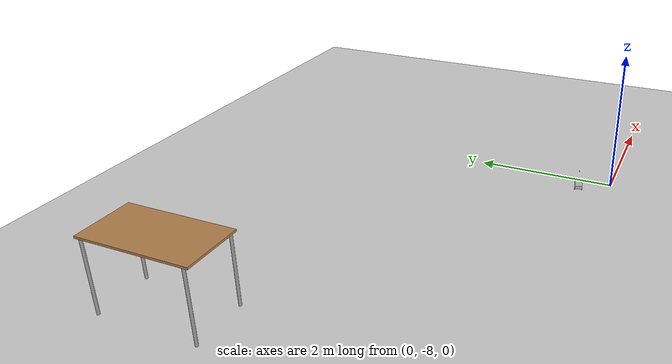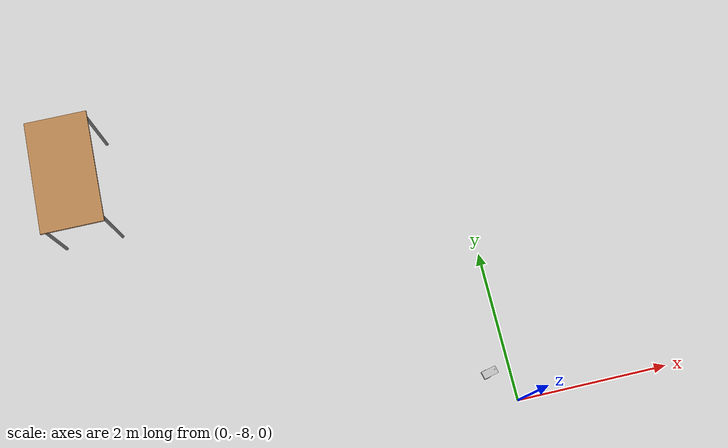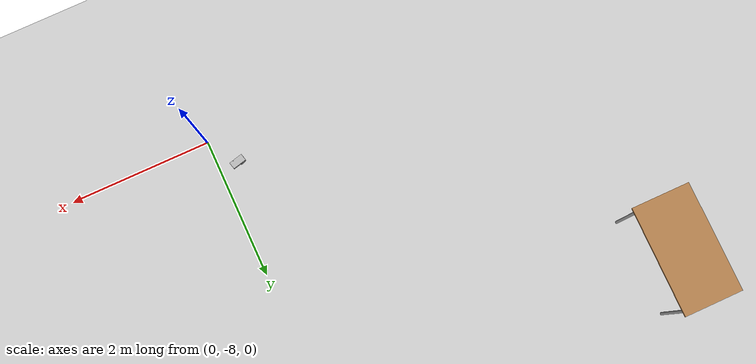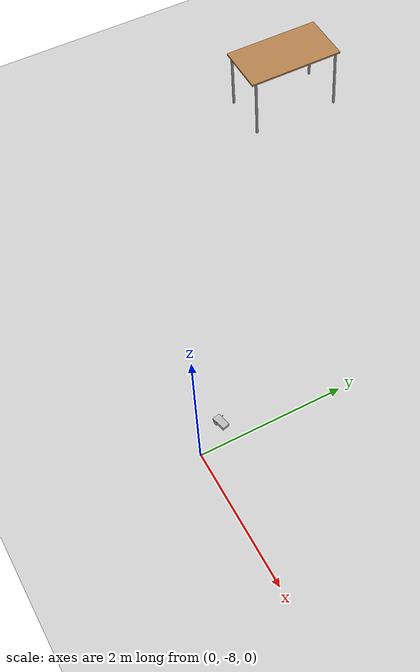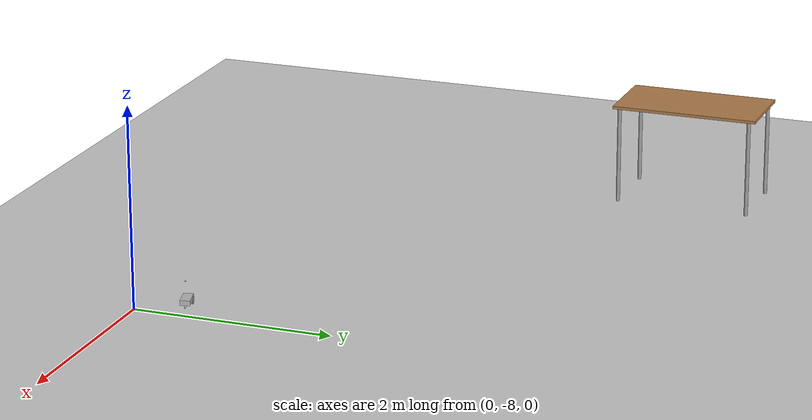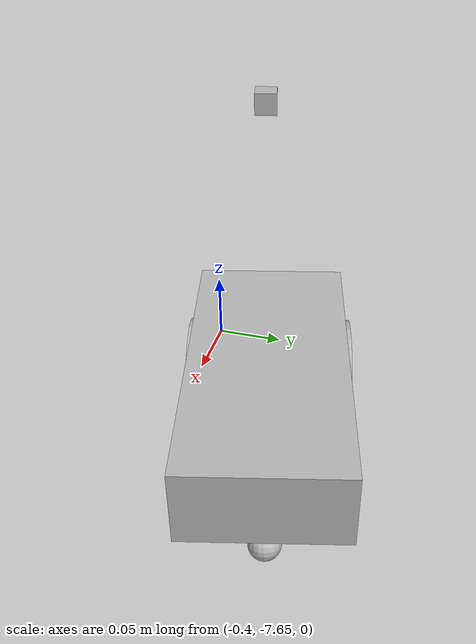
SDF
<sdf version="1.7">
 <world name="yolo_test_world">
  <light name="sun" type="directional">
   <pose>0 0 10 0 -0 0</pose>
   <diffuse>0.8 0.8 0.8 1</diffuse>
   <specular>0.2 0.2 0.2 1</specular>
   <attenuation>
    <range>1000</range>
    <constant>0.9</constant>
    <linear>0.01</linear>
    <quadratic>0.001</quadratic>
   </attenuation>
   <direction>-0.5 0.1 -0.9</direction>
   <spot><inner_angle>0</inner_angle><outer_angle>0</outer_angle><falloff>0</falloff></spot>
  </light>
  <model name="ground_plane">
   <static>1</static>
   <link name="link">
    <collision name="collision">
     <geometry><plane><normal>0 0 1</normal><size>100 100</size></plane></geometry>
     <surface>
      <contact><collide_bitmask>65535</collide_bitmask></contact>
      <friction><ode><mu>100</mu><mu2>50</mu2></ode></friction>
     </surface>
    </collision>
    <visual name="visual">
     <cast_shadows>0</cast_shadows>
     <geometry><plane><normal>0 0 1</normal><size>100 100</size></plane></geometry>
     <material>
      <script><uri>file://media/materials/scripts/gazebo.material</uri><name>Gazebo/Grey</name></script>
     </material>
    </visual>
   </link>
  </model>
  <model name="table">
   <static>1</static>
   <link name="link">
    <collision name="surface">
     <pose>0 0 1 0 -0 0</pose>
     <geometry><box><size>1.5 0.8 0.03</size></box></geometry>
     <surface><friction><ode><mu>0.6</mu><mu2>0.6</mu2></ode></friction></surface>
    </collision>
    <visual name="visual1">
     <pose>0 0 1 0 -0 0</pose>
     <geometry><box><size>1.5 0.8 0.03</size></box></geometry>
     <material>
      <script><uri>file://media/materials/scripts/gazebo.material</uri><name>Gazebo/Wood</name></script>
     </material>
    </visual>
    <collision name="front_left_leg">
     <pose>0.68 0.38 0.5 0 -0 0</pose>
     <geometry><cylinder><radius>0.02</radius><length>1</length></cylinder></geometry>
    </collision>
    <visual name="front_left_leg">
     <pose>0.68 0.38 0.5 0 -0 0</pose>
     <geometry><cylinder><radius>0.02</radius><length>1</length></cylinder></geometry>
     <material>
      <script><uri>file://media/materials/scripts/gazebo.material</uri><name>Gazebo/Grey</name></script>
     </material>
    </visual>
    <collision name="front_right_leg">
     <pose>0.68 -0.38 0.5 0 -0 0</pose>
     <geometry><cylinder><radius>0.02</radius><length>1</length></cylinder></geometry>
    </collision>
    <visual name="front_right_leg">
     <pose>0.68 -0.38 0.5 0 -0 0</pose>
     <geometry><cylinder><radius>0.02</radius><length>1</length></cylinder></geometry>
     <material>
      <script><uri>file://media/materials/scripts/gazebo.material</uri><name>Gazebo/Grey</name></script>
     </material>
    </visual>
    <collision name="back_right_leg">
     <pose>-0.68 -0.38 0.5 0 -0 0</pose>
     <geometry><cylinder><radius>0.02</radius><length>1</length></cylinder></geometry>
    </collision>
    <visual name="back_right_leg">
     <pose>-0.68 -0.38 0.5 0 -0 0</pose>
     <geometry><cylinder><radius>0.02</radius><length>1</length></cylinder></geometry>
     <material>
      <script><uri>file://media/materials/scripts/gazebo.material</uri><name>Gazebo/Grey</name></script>
     </material>
    </visual>
    <collision name="back_left_leg">
     <pose>-0.68 0.38 0.5 0 -0 0</pose>
     <geometry><cylinder><radius>0.02</radius><length>1</length></cylinder></geometry>
    </collision>
    <visual name="back_left_leg">
     <pose>-0.68 0.38 0.5 0 -0 0</pose>
     <geometry><cylinder><radius>0.02</radius><length>1</length></cylinder></geometry>
     <material>
      <script><uri>file://media/materials/scripts/gazebo.material</uri><name>Gazebo/Grey</name></script>
     </material>
    </visual>
   </link>
   <pose>-5 -4 0 0 -0 1.57</pose>
  </model>
  <gravity>0 0 -9.8</gravity>
  <magnetic_field>6e-06 2.3e-05 -4.2e-05</magnetic_field>
  <atmosphere type="adiabatic"/>
  <physics type="ode">
   <max_step_size>0.001</max_step_size>
   <real_time_factor>1</real_time_factor>
   <real_time_update_rate>1000</real_time_update_rate>
  </physics>
  <scene><ambient>0.4 0.4 0.4 1</ambient><background>0.7 0.7 0.7 1</background><shadows>1</shadows></scene>
  <audio><device>default</device></audio>
  <spherical_coordinates>
   <surface_model>EARTH_WGS84</surface_model>
   <latitude_deg>0</latitude_deg>
   <longitude_deg>0</longitude_deg>
   <elevation>0</elevation>
   <heading_deg>0</heading_deg>
  </spherical_coordinates>
  <model name="yolobot">
   <link name="base_link">
    <inertial>
     <pose>0 0 -0.025 0 -0 0</pose>
     <mass>1</mass>
     <inertia>
      <ixx>0.000333333</ixx>
      <ixy>0</ixy>
      <ixz>0</ixz>
      <iyy>0.000333333</iyy>
      <iyz>0</iyz>
      <izz>0.000333333</izz>
     </inertia>
    </inertial>
    <collision name="base_link_fixed_joint_lump__collision_chassis_collision">
     <geometry><box><size>0.2 0.1 0.05</size></box></geometry>
    </collision>
    <visual name="base_link_fixed_joint_lump__visual_chassis_visual">
     <geometry><box><size>0.2 0.1 0.05</size></box></geometry>
    </visual>
    <visual name="base_link_fixed_joint_lump__rgb_cam_camera_link_visual_1">
     <pose>0.04 0 0.2 0 -0 0</pose>
     <geometry><box><size>0.01 0.01 0.01</size></box></geometry>
    </visual>
    <sensor name="rgb_cam" type="camera">
     <always_on>1</always_on>
     <update_rate>10</update_rate>
     <camera name="rgb_cam">
      <horizontal_fov>1.39626</horizontal_fov>
      <image><width>640</width><height>480</height><format>R8G8B8</format></image>
      <clip><near>0.005</near><far>20</far></clip>
     </camera>
     <plugin name="camera_controller" filename="libgazebo_ros_camera.so">
      <alwaysOn>1</alwaysOn>
      <updateRate>0.0</updateRate>
      <cameraName>rgb_cam</cameraName>
      <imageTopicName>image_raw</imageTopicName>
      <cameraInfoTopicName>camera_info</cameraInfoTopicName>
      <frameName>rgb_cam_camera_link_frame</frameName>
      <hackBaseline>0.07</hackBaseline>
      <distortionK1>0.0</distortionK1>
      <distortionK2>0.0</distortionK2>
      <distortionK3>0.0</distortionK3>
      <distortionT1>0.0</distortionT1>
      <distortionT2>0.0</distortionT2>
     </plugin>
     <pose>0.05 0 0.2 0 -0 0</pose>
    </sensor>
   </link>
   <joint name="front_yaw_joint" type="revolute">
    <pose relative_to="base_link">0.08 0 -0.05 0 -0 0</pose>
    <parent>base_link</parent>
    <child>front_yaw_link</child>
    <axis>
     <xyz>0 0 1</xyz>
     <limit><effort>1000</effort><velocity>100</velocity><lower>-1e+16</lower><upper>1e+16</upper></limit>
     <dynamics>
      <damping>0</damping>
      <friction>0.1</friction>
      <spring_reference>0</spring_reference>
      <spring_stiffness>0</spring_stiffness>
     </dynamics>
    </axis>
   </joint>
   <link name="front_yaw_link">
    <pose relative_to="front_yaw_joint">0 0 0 0 -0 0</pose>
    <inertial>
     <pose>0 0 0 -0 1.5707 1.5707</pose>
     <mass>0.001</mass>
     <inertia>
      <ixx>5.14583e-09</ixx>
      <ixy>0</ixy>
      <ixz>0</ixz>
      <iyy>5.14583e-09</iyy>
      <iyz>0</iyz>
      <izz>1.0125e-08</izz>
     </inertia>
    </inertial>
    <collision name="front_yaw_link_fixed_joint_lump__link_right_wheel_collision_collision">
     <pose>0 0 0 1.57089 1.57079 -3.14159</pose>
     <geometry><cylinder><length>0.001</length><radius>0.0045</radius></cylinder></geometry>
    </collision>
   </link>
   <joint name="front_roll_joint" type="revolute">
    <pose relative_to="front_yaw_link">0 0 0 0 -0 0</pose>
    <parent>front_yaw_link</parent>
    <child>front_roll_link</child>
    <axis>
     <xyz>1 0 0</xyz>
     <limit><effort>1000</effort><velocity>100</velocity><lower>-1e+16</lower><upper>1e+16</upper></limit>
     <dynamics>
      <damping>0</damping>
      <friction>0.1</friction>
      <spring_reference>0</spring_reference>
      <spring_stiffness>0</spring_stiffness>
     </dynamics>
    </axis>
   </joint>
   <link name="front_roll_link">
    <pose relative_to="front_roll_joint">0 0 0 0 -0 0</pose>
    <inertial>
     <pose>0 0 0 -0 1.5707 1.5707</pose>
     <mass>0.001</mass>
     <inertia>
      <ixx>5.14583e-09</ixx>
      <ixy>0</ixy>
      <ixz>0</ixz>
      <iyy>5.14583e-09</iyy>
      <iyz>0</iyz>
      <izz>1.0125e-08</izz>
     </inertia>
    </inertial>
    <collision name="front_roll_link_fixed_joint_lump__link_right_wheel_collision_collision">
     <pose>0 0 0 1.57089 1.57079 -3.14159</pose>
     <geometry><cylinder><length>0.001</length><radius>0.0045</radius></cylinder></geometry>
    </collision>
   </link>
   <joint name="front_pitch_joint" type="revolute">
    <pose relative_to="front_roll_link">0 0 0 0 -0 0</pose>
    <parent>front_roll_link</parent>
    <child>front_pitch_link</child>
    <axis>
     <xyz>0 1 0</xyz>
     <limit><effort>1000</effort><velocity>100</velocity><lower>-1e+16</lower><upper>1e+16</upper></limit>
     <dynamics>
      <damping>0</damping>
      <friction>0.1</friction>
      <spring_reference>0</spring_reference>
      <spring_stiffness>0</spring_stiffness>
     </dynamics>
    </axis>
   </joint>
   <link name="front_pitch_link">
    <pose relative_to="front_pitch_joint">0 0 0 0 -0 0</pose>
    <inertial>
     <pose>0 0 0 -0 1.5707 1.5707</pose>
     <mass>0.001</mass>
     <inertia><ixx>4e-08</ixx><ixy>0</ixy><ixz>0</ixz><iyy>4e-08</iyy><iyz>0</iyz><izz>4e-08</izz></inertia>
    </inertial>
    <collision name="front_pitch_link_fixed_joint_lump__front_collision_collision">
     <pose>0 0 0 1.57089 1.57079 -3.14159</pose>
     <geometry><sphere><radius>0.01</radius></sphere></geometry>
    </collision>
    <visual name="front_pitch_link_fixed_joint_lump__front_visual_visual">
     <pose>0 0 0 1.57089 1.57079 -3.14159</pose>
     <geometry><sphere><radius>0.01</radius></sphere></geometry>
    </visual>
   </link>
   <joint name="joint_left_wheel" type="revolute">
    <pose relative_to="base_link">-0.05 -0.05 -0.025 0 -0 0</pose>
    <parent>base_link</parent>
    <child>left_wheel</child>
    <axis>
     <xyz>0 1 0</xyz>
     <limit><effort>10000</effort><velocity>1000</velocity><lower>-1e+16</lower><upper>1e+16</upper></limit>
     <dynamics><spring_reference>0</spring_reference><spring_stiffness>0</spring_stiffness></dynamics>
    </axis>
   </joint>
   <link name="left_wheel">
    <pose relative_to="joint_left_wheel">0 0 0 0 -0 0</pose>
    <inertial>
     <pose>0 0 0 -0 1.5707 1.5707</pose>
     <mass>0.2</mass>
     <inertia>
      <ixx>3.12667e-05</ixx>
      <ixy>0</ixy>
      <ixz>0</ixz>
      <iyy>3.12667e-05</iyy>
      <iyz>0</iyz>
      <izz>6.25e-05</izz>
     </inertia>
    </inertial>
    <collision name="left_wheel_fixed_joint_lump__link_right_wheel_collision_collision">
     <pose>0 0 0 1.57089 1.57079 -3.14159</pose>
     <geometry><cylinder><length>0.01</length><radius>0.035</radius></cylinder></geometry>
    </collision>
    <visual name="left_wheel_fixed_joint_lump__link_right_wheel_visual_visual">
     <pose>0 0 0 1.57089 1.57079 -3.14159</pose>
     <geometry><cylinder><length>0.01</length><radius>0.035</radius></cylinder></geometry>
    </visual>
   </link>
   <joint name="joint_right_wheel" type="revolute">
    <pose relative_to="base_link">-0.05 0.05 -0.025 0 -0 0</pose>
    <parent>base_link</parent>
    <child>right_wheel</child>
    <axis>
     <xyz>0 1 0</xyz>
     <limit><effort>10000</effort><velocity>1000</velocity><lower>-1e+16</lower><upper>1e+16</upper></limit>
     <dynamics><spring_reference>0</spring_reference><spring_stiffness>0</spring_stiffness></dynamics>
    </axis>
   </joint>
   <link name="right_wheel">
    <pose relative_to="joint_right_wheel">0 0 0 0 -0 0</pose>
    <inertial>
     <pose>0 0 0 -0 1.5707 1.5707</pose>
     <mass>0.2</mass>
     <inertia>
      <ixx>3.12667e-05</ixx>
      <ixy>0</ixy>
      <ixz>0</ixz>
      <iyy>3.12667e-05</iyy>
      <iyz>0</iyz>
      <izz>6.25e-05</izz>
     </inertia>
    </inertial>
    <collision name="right_wheel_fixed_joint_lump__link_right_wheel_collision_collision">
     <pose>0 0 0 1.57089 1.57079 -3.14159</pose>
     <geometry><cylinder><length>0.01</length><radius>0.035</radius></cylinder></geometry>
    </collision>
    <visual name="right_wheel_fixed_joint_lump__link_right_wheel_visual_visual">
     <pose>0 0 0 1.57089 1.57079 -3.14159</pose>
     <geometry><cylinder><length>0.01</length><radius>0.035</radius></cylinder></geometry>
    </visual>
   </link>
   <plugin name="gazebo_ros_control" filename="libgazebo_ros_control.so">
    <robotNamespace>/yolobot</robotNamespace>
    <robotParam>/robot_description</robotParam>
    <robotSimType>gazebo_ros_control/DefaultRobotHWSim</robotSimType>
   </plugin>
   <plugin name="differential_drive_controller" filename="libgazebo_ros_diff_drive.so">
    <ros><namespace>/yolobot</namespace></ros>
    <left_joint>joint_right_wheel</left_joint>
    <right_joint>joint_left_wheel</right_joint>
    <wheel_separation>0.1</wheel_separation>
    <wheel_diameter>0.025</wheel_diameter>
    <max_wheel_torque>0.1</max_wheel_torque>
    <max_wheel_acceleration>1.0</max_wheel_acceleration>
    <publish_odom>1</publish_odom>
    <publish_odom_tf>1</publish_odom_tf>
    <odometry_frame>odom</odometry_frame>
    <robot_base_frame>chassis</robot_base_frame>
   </plugin>
   <static>0</static>
   <plugin name="gazebo_ros_imu_controller" filename="libgazebo_ros_imu.so">
    <robotNamespace>/yolobot/</robotNamespace>
    <topicName>imu/data3</topicName>
    <serviceName>imu/service</serviceName>
    <gaussianNoise>0</gaussianNoise>
    <rpyOffsets>0 0 0</rpyOffsets>
    <updateRate>50.0</updateRate>
    <alwaysOn>1</alwaysOn>
    <gaussianNoise>0</gaussianNoise>
    <bodyName>base_link</bodyName>
    <xyzOffset>0 0 0</xyzOffset>
    <rpyOffset>0 -0 0</rpyOffset>
   </plugin>
   <pose>-0.269839 -7.57501 0.059519 1.2e-05 0.009527 0.238482</pose>
  </model>
 </world>
</sdf>
